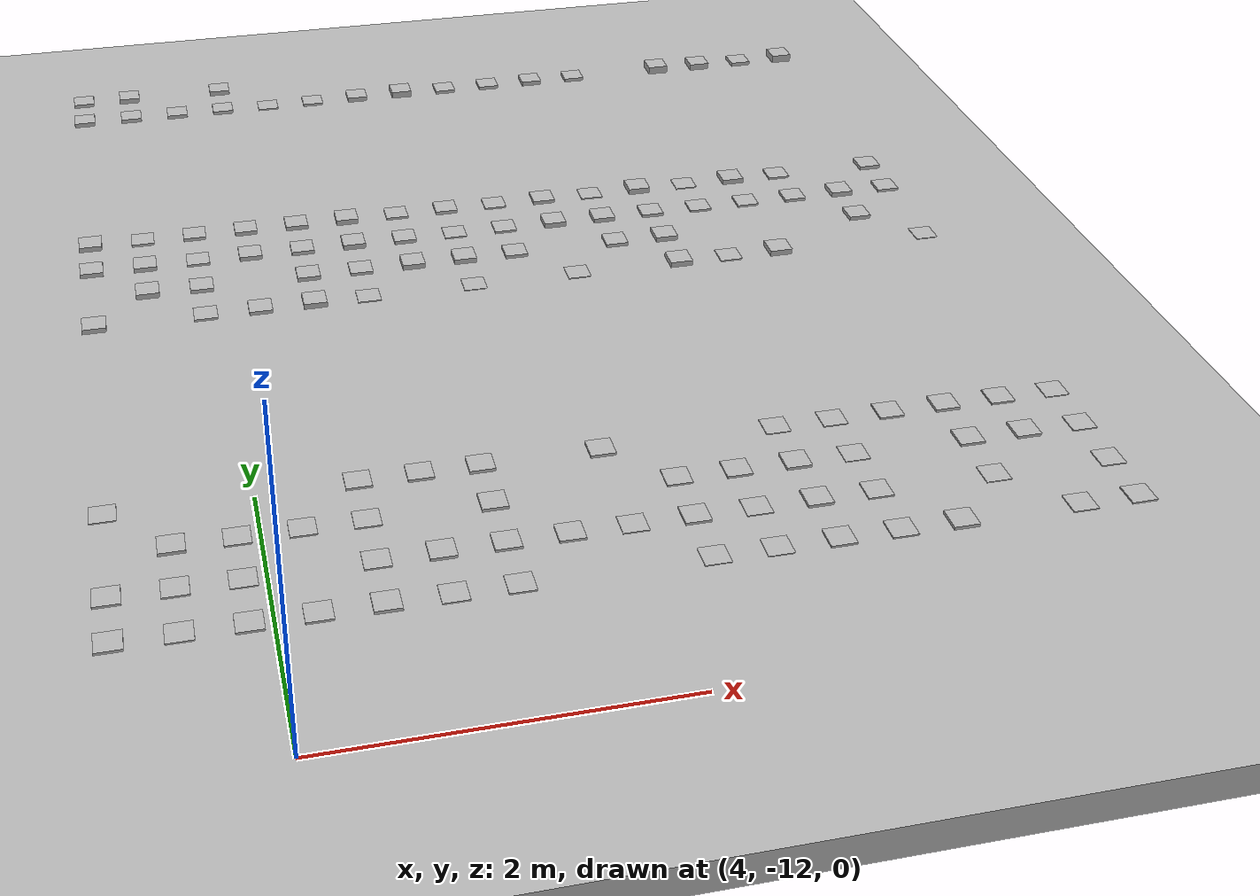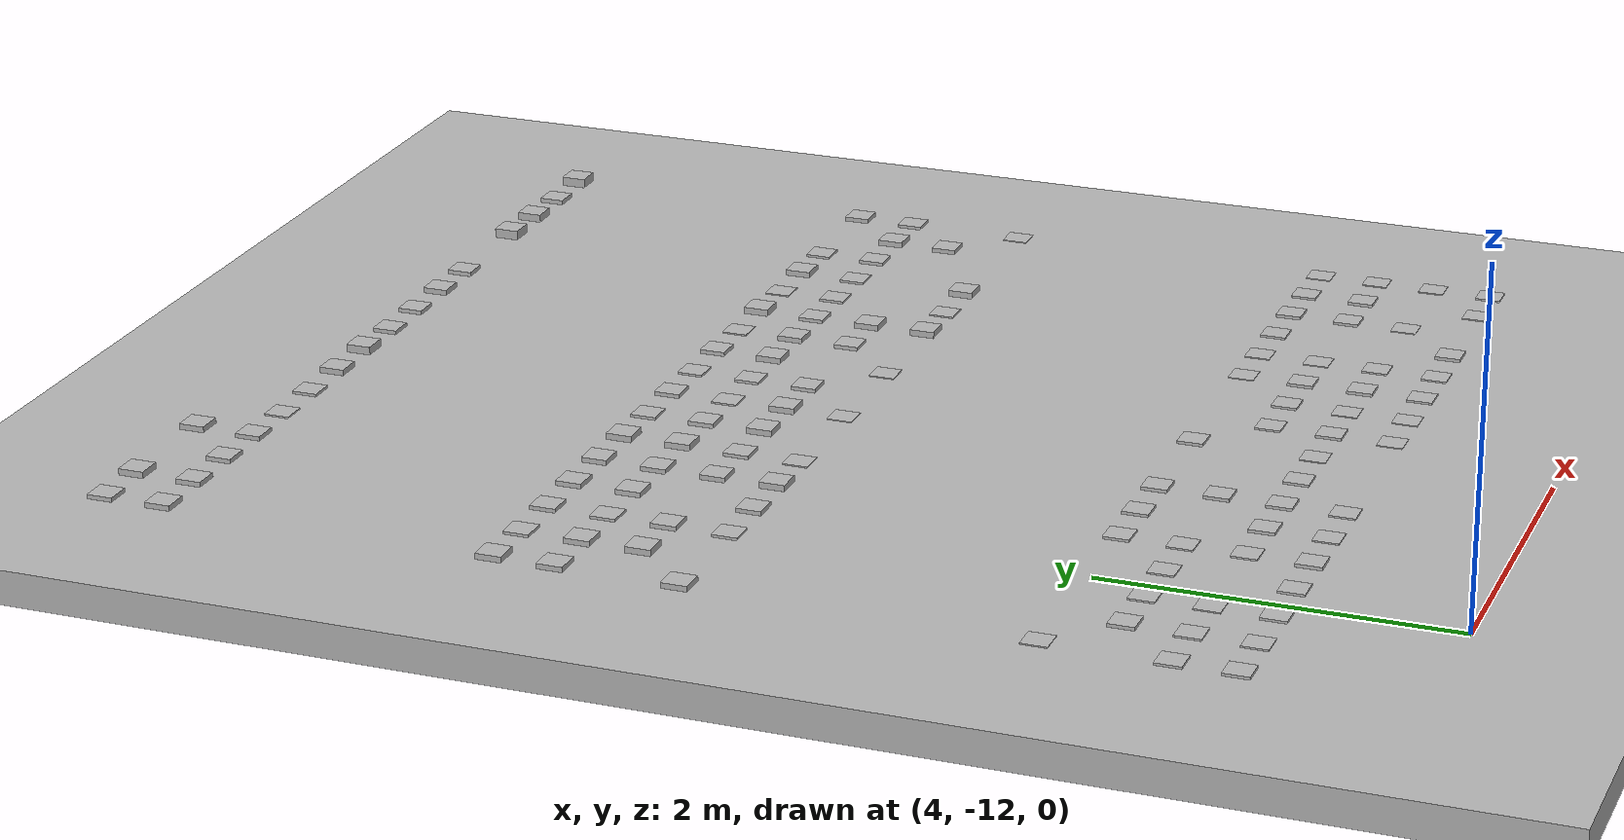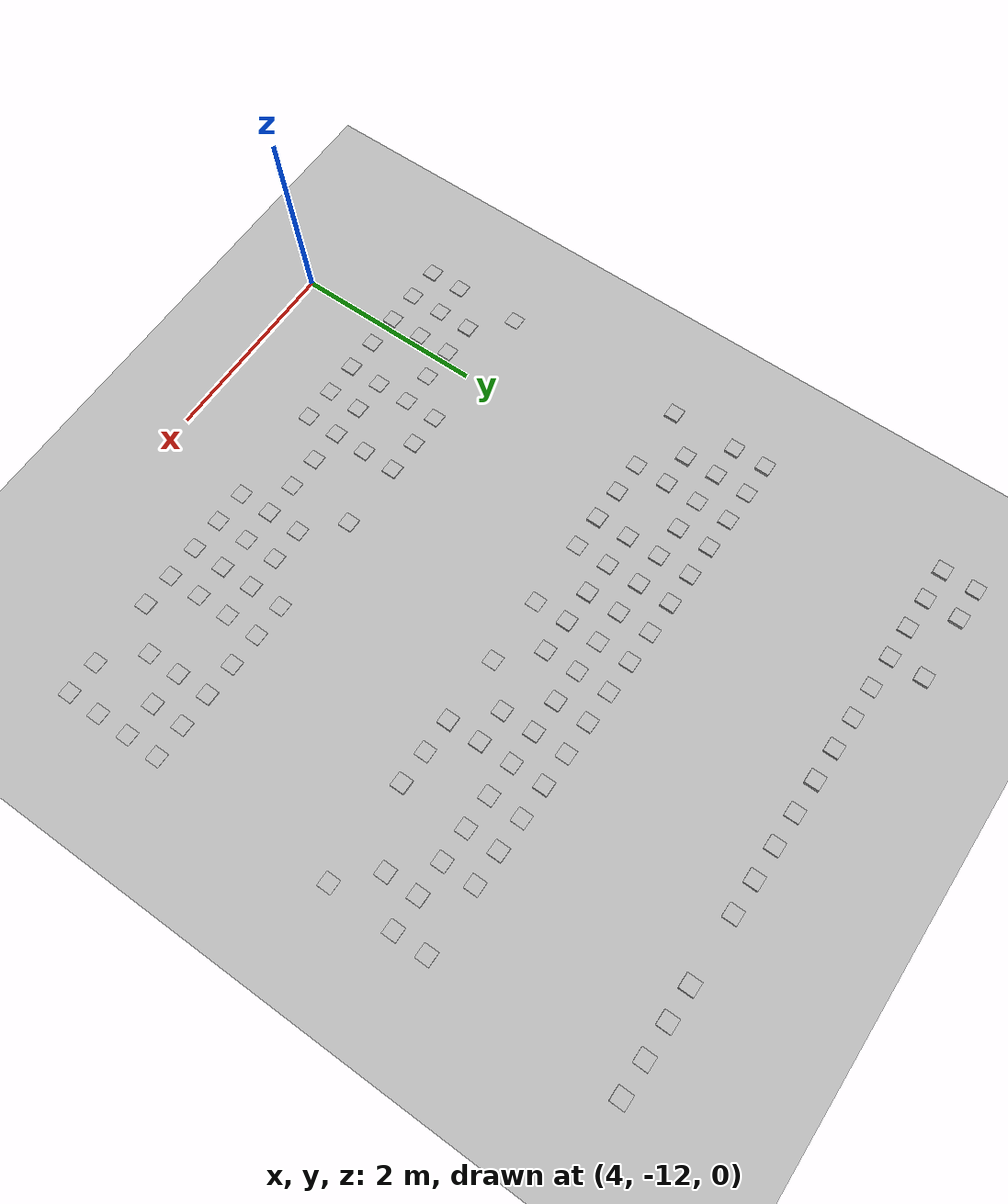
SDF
<sdf version="1.6">
 <world name="ugv_rough">
  <model name="ground">
   <static>true</static>
   <link name="l">
    <collision name="c"><geometry><box><size>60 60 0.2</size></box></geometry></collision>
    <visual name="v"><geometry><box><size>60 60 0.2</size></box></geometry></visual>
    <pose>0 0 -0.1 0 0 0</pose>
   </link>
  </model>
  <model name="r0_0">
   <static>true</static>
   <pose>3.175 -11.025 0.0078 0 0 0</pose>
   <link name="l">
    <collision name="c"><geometry><box><size>0.15 0.15 0.015547132854011278</size></box></geometry></collision>
    <visual name="v"><geometry><box><size>0.15 0.15 0.015547132854011278</size></box></geometry></visual>
   </link>
  </model>
  <model name="r0_1">
   <static>true</static>
   <pose>3.175 -10.675 0.0067 0 0 0</pose>
   <link name="l">
    <collision name="c"><geometry><box><size>0.15 0.15 0.013396511191184995</size></box></geometry></collision>
    <visual name="v"><geometry><box><size>0.15 0.15 0.013396511191184995</size></box></geometry></visual>
   </link>
  </model>
  <model name="r0_3">
   <static>true</static>
   <pose>3.175 -9.975 0.0035 0 0 0</pose>
   <link name="l">
    <collision name="c"><geometry><box><size>0.15 0.15 0.007059410223802909</size></box></geometry></collision>
    <visual name="v"><geometry><box><size>0.15 0.15 0.007059410223802909</size></box></geometry></visual>
   </link>
  </model>
  <model name="r0_4">
   <static>true</static>
   <pose>3.525 -11.025 0.0047 0 0 0</pose>
   <link name="l">
    <collision name="c"><geometry><box><size>0.15 0.15 0.009358154858016839</size></box></geometry></collision>
    <visual name="v"><geometry><box><size>0.15 0.15 0.009358154858016839</size></box></geometry></visual>
   </link>
  </model>
  <model name="r0_5">
   <static>true</static>
   <pose>3.525 -10.675 0.0053 0 0 0</pose>
   <link name="l">
    <collision name="c"><geometry><box><size>0.15 0.15 0.01069367482941755</size></box></geometry></collision>
    <visual name="v"><geometry><box><size>0.15 0.15 0.01069367482941755</size></box></geometry></visual>
   </link>
  </model>
  <model name="r0_6">
   <static>true</static>
   <pose>3.525 -10.325 0.0098 0 0 0</pose>
   <link name="l">
    <collision name="c"><geometry><box><size>0.15 0.15 0.019566181218247946</size></box></geometry></collision>
    <visual name="v"><geometry><box><size>0.15 0.15 0.019566181218247946</size></box></geometry></visual>
   </link>
  </model>
  <model name="r0_8">
   <static>true</static>
   <pose>3.875 -11.025 0.0067 0 0 0</pose>
   <link name="l">
    <collision name="c"><geometry><box><size>0.15 0.15 0.013424869364605326</size></box></geometry></collision>
    <visual name="v"><geometry><box><size>0.15 0.15 0.013424869364605326</size></box></geometry></visual>
   </link>
  </model>
  <model name="r0_9">
   <static>true</static>
   <pose>3.875 -10.675 0.0036 0 0 0</pose>
   <link name="l">
    <collision name="c"><geometry><box><size>0.15 0.15 0.0072845883189475115</size></box></geometry></collision>
    <visual name="v"><geometry><box><size>0.15 0.15 0.0072845883189475115</size></box></geometry></visual>
   </link>
  </model>
  <model name="r0_10">
   <static>true</static>
   <pose>3.875 -10.325 0.0049 0 0 0</pose>
   <link name="l">
    <collision name="c"><geometry><box><size>0.15 0.15 0.009776714143239716</size></box></geometry></collision>
    <visual name="v"><geometry><box><size>0.15 0.15 0.009776714143239716</size></box></geometry></visual>
   </link>
  </model>
  <model name="r0_12">
   <static>true</static>
   <pose>4.225 -11.025 0.0067 0 0 0</pose>
   <link name="l">
    <collision name="c"><geometry><box><size>0.15 0.15 0.013323967511427184</size></box></geometry></collision>
    <visual name="v"><geometry><box><size>0.15 0.15 0.013323967511427184</size></box></geometry></visual>
   </link>
  </model>
  <model name="r0_14">
   <static>true</static>
   <pose>4.225 -10.325 0.0046 0 0 0</pose>
   <link name="l">
    <collision name="c"><geometry><box><size>0.15 0.15 0.009161281165935262</size></box></geometry></collision>
    <visual name="v"><geometry><box><size>0.15 0.15 0.009161281165935262</size></box></geometry></visual>
   </link>
  </model>
  <model name="r0_16">
   <static>true</static>
   <pose>4.575 -11.025 0.0097 0 0 0</pose>
   <link name="l">
    <collision name="c"><geometry><box><size>0.15 0.15 0.019485795907556572</size></box></geometry></collision>
    <visual name="v"><geometry><box><size>0.15 0.15 0.019485795907556572</size></box></geometry></visual>
   </link>
  </model>
  <model name="r0_17">
   <static>true</static>
   <pose>4.575 -10.675 0.0049 0 0 0</pose>
   <link name="l">
    <collision name="c"><geometry><box><size>0.15 0.15 0.009749521485378132</size></box></geometry></collision>
    <visual name="v"><geometry><box><size>0.15 0.15 0.009749521485378132</size></box></geometry></visual>
   </link>
  </model>
  <model name="r0_18">
   <static>true</static>
   <pose>4.575 -10.325 0.0046 0 0 0</pose>
   <link name="l">
    <collision name="c"><geometry><box><size>0.15 0.15 0.009232277272747193</size></box></geometry></collision>
    <visual name="v"><geometry><box><size>0.15 0.15 0.009232277272747193</size></box></geometry></visual>
   </link>
  </model>
  <model name="r0_19">
   <static>true</static>
   <pose>4.575 -9.975 0.0071 0 0 0</pose>
   <link name="l">
    <collision name="c"><geometry><box><size>0.15 0.15 0.014282943116164005</size></box></geometry></collision>
    <visual name="v"><geometry><box><size>0.15 0.15 0.014282943116164005</size></box></geometry></visual>
   </link>
  </model>
  <model name="r0_20">
   <static>true</static>
   <pose>4.925 -11.025 0.0042 0 0 0</pose>
   <link name="l">
    <collision name="c"><geometry><box><size>0.15 0.15 0.00831456298999945</size></box></geometry></collision>
    <visual name="v"><geometry><box><size>0.15 0.15 0.00831456298999945</size></box></geometry></visual>
   </link>
  </model>
  <model name="r0_21">
   <static>true</static>
   <pose>4.925 -10.675 0.0089 0 0 0</pose>
   <link name="l">
    <collision name="c"><geometry><box><size>0.15 0.15 0.01776023376003058</size></box></geometry></collision>
    <visual name="v"><geometry><box><size>0.15 0.15 0.01776023376003058</size></box></geometry></visual>
   </link>
  </model>
  <model name="r0_23">
   <static>true</static>
   <pose>4.925 -9.975 0.0083 0 0 0</pose>
   <link name="l">
    <collision name="c"><geometry><box><size>0.15 0.15 0.01667012535569093</size></box></geometry></collision>
    <visual name="v"><geometry><box><size>0.15 0.15 0.01667012535569093</size></box></geometry></visual>
   </link>
  </model>
  <model name="r0_24">
   <static>true</static>
   <pose>5.275 -11.025 0.0047 0 0 0</pose>
   <link name="l">
    <collision name="c"><geometry><box><size>0.15 0.15 0.009369894819950162</size></box></geometry></collision>
    <visual name="v"><geometry><box><size>0.15 0.15 0.009369894819950162</size></box></geometry></visual>
   </link>
  </model>
  <model name="r0_25">
   <static>true</static>
   <pose>5.275 -10.675 0.0081 0 0 0</pose>
   <link name="l">
    <collision name="c"><geometry><box><size>0.15 0.15 0.01622959625288559</size></box></geometry></collision>
    <visual name="v"><geometry><box><size>0.15 0.15 0.01622959625288559</size></box></geometry></visual>
   </link>
  </model>
  <model name="r0_26">
   <static>true</static>
   <pose>5.275 -10.325 0.0095 0 0 0</pose>
   <link name="l">
    <collision name="c"><geometry><box><size>0.15 0.15 0.018911829772317448</size></box></geometry></collision>
    <visual name="v"><geometry><box><size>0.15 0.15 0.018911829772317448</size></box></geometry></visual>
   </link>
  </model>
  <model name="r0_27">
   <static>true</static>
   <pose>5.275 -9.975 0.0098 0 0 0</pose>
   <link name="l">
    <collision name="c"><geometry><box><size>0.15 0.15 0.019661767563897977</size></box></geometry></collision>
    <visual name="v"><geometry><box><size>0.15 0.15 0.019661767563897977</size></box></geometry></visual>
   </link>
  </model>
  <model name="r0_29">
   <static>true</static>
   <pose>5.625 -10.675 0.0070 0 0 0</pose>
   <link name="l">
    <collision name="c"><geometry><box><size>0.15 0.15 0.01397311519152616</size></box></geometry></collision>
    <visual name="v"><geometry><box><size>0.15 0.15 0.01397311519152616</size></box></geometry></visual>
   </link>
  </model>
  <model name="r0_33">
   <static>true</static>
   <pose>5.975 -10.675 0.0031 0 0 0</pose>
   <link name="l">
    <collision name="c"><geometry><box><size>0.15 0.15 0.006281241597856808</size></box></geometry></collision>
    <visual name="v"><geometry><box><size>0.15 0.15 0.006281241597856808</size></box></geometry></visual>
   </link>
  </model>
  <model name="r0_35">
   <static>true</static>
   <pose>5.975 -9.975 0.0085 0 0 0</pose>
   <link name="l">
    <collision name="c"><geometry><box><size>0.15 0.15 0.017080982514727245</size></box></geometry></collision>
    <visual name="v"><geometry><box><size>0.15 0.15 0.017080982514727245</size></box></geometry></visual>
   </link>
  </model>
  <model name="r0_36">
   <static>true</static>
   <pose>6.325 -11.025 0.0029 0 0 0</pose>
   <link name="l">
    <collision name="c"><geometry><box><size>0.15 0.15 0.005820320772913936</size></box></geometry></collision>
    <visual name="v"><geometry><box><size>0.15 0.15 0.005820320772913936</size></box></geometry></visual>
   </link>
  </model>
  <model name="r0_37">
   <static>true</static>
   <pose>6.325 -10.675 0.0078 0 0 0</pose>
   <link name="l">
    <collision name="c"><geometry><box><size>0.15 0.15 0.015600951726700656</size></box></geometry></collision>
    <visual name="v"><geometry><box><size>0.15 0.15 0.015600951726700656</size></box></geometry></visual>
   </link>
  </model>
  <model name="r0_38">
   <static>true</static>
   <pose>6.325 -10.325 0.0055 0 0 0</pose>
   <link name="l">
    <collision name="c"><geometry><box><size>0.15 0.15 0.010961930322511393</size></box></geometry></collision>
    <visual name="v"><geometry><box><size>0.15 0.15 0.010961930322511393</size></box></geometry></visual>
   </link>
  </model>
  <model name="r0_40">
   <static>true</static>
   <pose>6.675 -11.025 0.0029 0 0 0</pose>
   <link name="l">
    <collision name="c"><geometry><box><size>0.15 0.15 0.005840765443610594</size></box></geometry></collision>
    <visual name="v"><geometry><box><size>0.15 0.15 0.005840765443610594</size></box></geometry></visual>
   </link>
  </model>
  <model name="r0_41">
   <static>true</static>
   <pose>6.675 -10.675 0.0032 0 0 0</pose>
   <link name="l">
    <collision name="c"><geometry><box><size>0.15 0.15 0.006389055547988674</size></box></geometry></collision>
    <visual name="v"><geometry><box><size>0.15 0.15 0.006389055547988674</size></box></geometry></visual>
   </link>
  </model>
  <model name="r0_42">
   <static>true</static>
   <pose>6.675 -10.325 0.0066 0 0 0</pose>
   <link name="l">
    <collision name="c"><geometry><box><size>0.15 0.15 0.013171964470758152</size></box></geometry></collision>
    <visual name="v"><geometry><box><size>0.15 0.15 0.013171964470758152</size></box></geometry></visual>
   </link>
  </model>
  <model name="r0_44">
   <static>true</static>
   <pose>7.025 -11.025 0.0062 0 0 0</pose>
   <link name="l">
    <collision name="c"><geometry><box><size>0.15 0.15 0.012388606739907073</size></box></geometry></collision>
    <visual name="v"><geometry><box><size>0.15 0.15 0.012388606739907073</size></box></geometry></visual>
   </link>
  </model>
  <model name="r0_45">
   <static>true</static>
   <pose>7.025 -10.675 0.0090 0 0 0</pose>
   <link name="l">
    <collision name="c"><geometry><box><size>0.15 0.15 0.017906772196044207</size></box></geometry></collision>
    <visual name="v"><geometry><box><size>0.15 0.15 0.017906772196044207</size></box></geometry></visual>
   </link>
  </model>
  <model name="r0_46">
   <static>true</static>
   <pose>7.025 -10.325 0.0087 0 0 0</pose>
   <link name="l">
    <collision name="c"><geometry><box><size>0.15 0.15 0.01738868417139366</size></box></geometry></collision>
    <visual name="v"><geometry><box><size>0.15 0.15 0.01738868417139366</size></box></geometry></visual>
   </link>
  </model>
  <model name="r0_47">
   <static>true</static>
   <pose>7.025 -9.975 0.0029 0 0 0</pose>
   <link name="l">
    <collision name="c"><geometry><box><size>0.15 0.15 0.005876138713369046</size></box></geometry></collision>
    <visual name="v"><geometry><box><size>0.15 0.15 0.005876138713369046</size></box></geometry></visual>
   </link>
  </model>
  <model name="r0_48">
   <static>true</static>
   <pose>7.375 -11.025 0.0046 0 0 0</pose>
   <link name="l">
    <collision name="c"><geometry><box><size>0.15 0.15 0.00916409617161099</size></box></geometry></collision>
    <visual name="v"><geometry><box><size>0.15 0.15 0.00916409617161099</size></box></geometry></visual>
   </link>
  </model>
  <model name="r0_49">
   <static>true</static>
   <pose>7.375 -10.675 0.0048 0 0 0</pose>
   <link name="l">
    <collision name="c"><geometry><box><size>0.15 0.15 0.009699595957422383</size></box></geometry></collision>
    <visual name="v"><geometry><box><size>0.15 0.15 0.009699595957422383</size></box></geometry></visual>
   </link>
  </model>
  <model name="r0_50">
   <static>true</static>
   <pose>7.375 -10.325 0.0028 0 0 0</pose>
   <link name="l">
    <collision name="c"><geometry><box><size>0.15 0.15 0.00560776538717445</size></box></geometry></collision>
    <visual name="v"><geometry><box><size>0.15 0.15 0.00560776538717445</size></box></geometry></visual>
   </link>
  </model>
  <model name="r0_51">
   <static>true</static>
   <pose>7.375 -9.975 0.0033 0 0 0</pose>
   <link name="l">
    <collision name="c"><geometry><box><size>0.15 0.15 0.006579138927012005</size></box></geometry></collision>
    <visual name="v"><geometry><box><size>0.15 0.15 0.006579138927012005</size></box></geometry></visual>
   </link>
  </model>
  <model name="r0_52">
   <static>true</static>
   <pose>7.725 -11.025 0.0098 0 0 0</pose>
   <link name="l">
    <collision name="c"><geometry><box><size>0.15 0.15 0.019684848480530086</size></box></geometry></collision>
    <visual name="v"><geometry><box><size>0.15 0.15 0.019684848480530086</size></box></geometry></visual>
   </link>
  </model>
  <model name="r0_55">
   <static>true</static>
   <pose>7.725 -9.975 0.0065 0 0 0</pose>
   <link name="l">
    <collision name="c"><geometry><box><size>0.15 0.15 0.013039544330893424</size></box></geometry></collision>
    <visual name="v"><geometry><box><size>0.15 0.15 0.013039544330893424</size></box></geometry></visual>
   </link>
  </model>
  <model name="r0_57">
   <static>true</static>
   <pose>8.075 -10.675 0.0029 0 0 0</pose>
   <link name="l">
    <collision name="c"><geometry><box><size>0.15 0.15 0.005841574045622176</size></box></geometry></collision>
    <visual name="v"><geometry><box><size>0.15 0.15 0.005841574045622176</size></box></geometry></visual>
   </link>
  </model>
  <model name="r0_58">
   <static>true</static>
   <pose>8.075 -10.325 0.0079 0 0 0</pose>
   <link name="l">
    <collision name="c"><geometry><box><size>0.15 0.15 0.015868859443835412</size></box></geometry></collision>
    <visual name="v"><geometry><box><size>0.15 0.15 0.015868859443835412</size></box></geometry></visual>
   </link>
  </model>
  <model name="r0_59">
   <static>true</static>
   <pose>8.075 -9.975 0.0091 0 0 0</pose>
   <link name="l">
    <collision name="c"><geometry><box><size>0.15 0.15 0.018231862017419474</size></box></geometry></collision>
    <visual name="v"><geometry><box><size>0.15 0.15 0.018231862017419474</size></box></geometry></visual>
   </link>
  </model>
  <model name="r0_60">
   <static>true</static>
   <pose>8.425 -11.025 0.0037 0 0 0</pose>
   <link name="l">
    <collision name="c"><geometry><box><size>0.15 0.15 0.007407835591790875</size></box></geometry></collision>
    <visual name="v"><geometry><box><size>0.15 0.15 0.007407835591790875</size></box></geometry></visual>
   </link>
  </model>
  <model name="r0_62">
   <static>true</static>
   <pose>8.425 -10.325 0.0088 0 0 0</pose>
   <link name="l">
    <collision name="c"><geometry><box><size>0.15 0.15 0.01760162653569356</size></box></geometry></collision>
    <visual name="v"><geometry><box><size>0.15 0.15 0.01760162653569356</size></box></geometry></visual>
   </link>
  </model>
  <model name="r0_63">
   <static>true</static>
   <pose>8.425 -9.975 0.0063 0 0 0</pose>
   <link name="l">
    <collision name="c"><geometry><box><size>0.15 0.15 0.012651329003121664</size></box></geometry></collision>
    <visual name="v"><geometry><box><size>0.15 0.15 0.012651329003121664</size></box></geometry></visual>
   </link>
  </model>
  <model name="r0_64">
   <static>true</static>
   <pose>8.775 -11.025 0.0050 0 0 0</pose>
   <link name="l">
    <collision name="c"><geometry><box><size>0.15 0.15 0.01007028652117116</size></box></geometry></collision>
    <visual name="v"><geometry><box><size>0.15 0.15 0.01007028652117116</size></box></geometry></visual>
   </link>
  </model>
  <model name="r0_65">
   <static>true</static>
   <pose>8.775 -10.675 0.0033 0 0 0</pose>
   <link name="l">
    <collision name="c"><geometry><box><size>0.15 0.15 0.0066168711934217785</size></box></geometry></collision>
    <visual name="v"><geometry><box><size>0.15 0.15 0.0066168711934217785</size></box></geometry></visual>
   </link>
  </model>
  <model name="r0_66">
   <static>true</static>
   <pose>8.775 -10.325 0.0035 0 0 0</pose>
   <link name="l">
    <collision name="c"><geometry><box><size>0.15 0.15 0.006948003670148912</size></box></geometry></collision>
    <visual name="v"><geometry><box><size>0.15 0.15 0.006948003670148912</size></box></geometry></visual>
   </link>
  </model>
  <model name="r0_67">
   <static>true</static>
   <pose>8.775 -9.975 0.0029 0 0 0</pose>
   <link name="l">
    <collision name="c"><geometry><box><size>0.15 0.15 0.005848231726648963</size></box></geometry></collision>
    <visual name="v"><geometry><box><size>0.15 0.15 0.005848231726648963</size></box></geometry></visual>
   </link>
  </model>
  <model name="r1_0">
   <static>true</static>
   <pose>3.175 -8.025 0.0159 0 0 0</pose>
   <link name="l">
    <collision name="c"><geometry><box><size>0.15 0.15 0.03186603871839881</size></box></geometry></collision>
    <visual name="v"><geometry><box><size>0.15 0.15 0.03186603871839881</size></box></geometry></visual>
   </link>
  </model>
  <model name="r1_2">
   <static>true</static>
   <pose>3.175 -7.325 0.0152 0 0 0</pose>
   <link name="l">
    <collision name="c"><geometry><box><size>0.15 0.15 0.030409590958963627</size></box></geometry></collision>
    <visual name="v"><geometry><box><size>0.15 0.15 0.030409590958963627</size></box></geometry></visual>
   </link>
  </model>
  <model name="r1_3">
   <static>true</static>
   <pose>3.175 -6.975 0.0173 0 0 0</pose>
   <link name="l">
    <collision name="c"><geometry><box><size>0.15 0.15 0.034508149607381425</size></box></geometry></collision>
    <visual name="v"><geometry><box><size>0.15 0.15 0.034508149607381425</size></box></geometry></visual>
   </link>
  </model>
  <model name="r1_5">
   <static>true</static>
   <pose>3.525 -7.675 0.0180 0 0 0</pose>
   <link name="l">
    <collision name="c"><geometry><box><size>0.15 0.15 0.03609969746390211</size></box></geometry></collision>
    <visual name="v"><geometry><box><size>0.15 0.15 0.03609969746390211</size></box></geometry></visual>
   </link>
  </model>
  <model name="r1_6">
   <static>true</static>
   <pose>3.525 -7.325 0.0157 0 0 0</pose>
   <link name="l">
    <collision name="c"><geometry><box><size>0.15 0.15 0.031435842263765126</size></box></geometry></collision>
    <visual name="v"><geometry><box><size>0.15 0.15 0.031435842263765126</size></box></geometry></visual>
   </link>
  </model>
  <model name="r1_7">
   <static>true</static>
   <pose>3.525 -6.975 0.0081 0 0 0</pose>
   <link name="l">
    <collision name="c"><geometry><box><size>0.15 0.15 0.016267186618441353</size></box></geometry></collision>
    <visual name="v"><geometry><box><size>0.15 0.15 0.016267186618441353</size></box></geometry></visual>
   </link>
  </model>
  <model name="r1_8">
   <static>true</static>
   <pose>3.875 -8.025 0.0075 0 0 0</pose>
   <link name="l">
    <collision name="c"><geometry><box><size>0.15 0.15 0.01497890578634081</size></box></geometry></collision>
    <visual name="v"><geometry><box><size>0.15 0.15 0.01497890578634081</size></box></geometry></visual>
   </link>
  </model>
  <model name="r1_9">
   <static>true</static>
   <pose>3.875 -7.675 0.0130 0 0 0</pose>
   <link name="l">
    <collision name="c"><geometry><box><size>0.15 0.15 0.025961049131654187</size></box></geometry></collision>
    <visual name="v"><geometry><box><size>0.15 0.15 0.025961049131654187</size></box></geometry></visual>
   </link>
  </model>
  <model name="r1_10">
   <static>true</static>
   <pose>3.875 -7.325 0.0080 0 0 0</pose>
   <link name="l">
    <collision name="c"><geometry><box><size>0.15 0.15 0.01603698664342799</size></box></geometry></collision>
    <visual name="v"><geometry><box><size>0.15 0.15 0.01603698664342799</size></box></geometry></visual>
   </link>
  </model>
  <model name="r1_11">
   <static>true</static>
   <pose>3.875 -6.975 0.0114 0 0 0</pose>
   <link name="l">
    <collision name="c"><geometry><box><size>0.15 0.15 0.022884436905110297</size></box></geometry></collision>
    <visual name="v"><geometry><box><size>0.15 0.15 0.022884436905110297</size></box></geometry></visual>
   </link>
  </model>
  <model name="r1_12">
   <static>true</static>
   <pose>4.225 -8.025 0.0122 0 0 0</pose>
   <link name="l">
    <collision name="c"><geometry><box><size>0.15 0.15 0.02431172248102034</size></box></geometry></collision>
    <visual name="v"><geometry><box><size>0.15 0.15 0.02431172248102034</size></box></geometry></visual>
   </link>
  </model>
  <model name="r1_14">
   <static>true</static>
   <pose>4.225 -7.325 0.0147 0 0 0</pose>
   <link name="l">
    <collision name="c"><geometry><box><size>0.15 0.15 0.029483520373502853</size></box></geometry></collision>
    <visual name="v"><geometry><box><size>0.15 0.15 0.029483520373502853</size></box></geometry></visual>
   </link>
  </model>
  <model name="r1_15">
   <static>true</static>
   <pose>4.225 -6.975 0.0142 0 0 0</pose>
   <link name="l">
    <collision name="c"><geometry><box><size>0.15 0.15 0.028339455350289124</size></box></geometry></collision>
    <visual name="v"><geometry><box><size>0.15 0.15 0.028339455350289124</size></box></geometry></visual>
   </link>
  </model>
  <model name="r1_16">
   <static>true</static>
   <pose>4.575 -8.025 0.0184 0 0 0</pose>
   <link name="l">
    <collision name="c"><geometry><box><size>0.15 0.15 0.0368868981281233</size></box></geometry></collision>
    <visual name="v"><geometry><box><size>0.15 0.15 0.0368868981281233</size></box></geometry></visual>
   </link>
  </model>
  <model name="r1_17">
   <static>true</static>
   <pose>4.575 -7.675 0.0143 0 0 0</pose>
   <link name="l">
    <collision name="c"><geometry><box><size>0.15 0.15 0.02859756133035618</size></box></geometry></collision>
    <visual name="v"><geometry><box><size>0.15 0.15 0.02859756133035618</size></box></geometry></visual>
   </link>
  </model>
  <model name="r1_18">
   <static>true</static>
   <pose>4.575 -7.325 0.0131 0 0 0</pose>
   <link name="l">
    <collision name="c"><geometry><box><size>0.15 0.15 0.026230899874219258</size></box></geometry></collision>
    <visual name="v"><geometry><box><size>0.15 0.15 0.026230899874219258</size></box></geometry></visual>
   </link>
  </model>
  <model name="r1_19">
   <static>true</static>
   <pose>4.575 -6.975 0.0147 0 0 0</pose>
   <link name="l">
    <collision name="c"><geometry><box><size>0.15 0.15 0.029484286587581014</size></box></geometry></collision>
    <visual name="v"><geometry><box><size>0.15 0.15 0.029484286587581014</size></box></geometry></visual>
   </link>
  </model>
  <model name="r1_20">
   <static>true</static>
   <pose>4.925 -8.025 0.0038 0 0 0</pose>
   <link name="l">
    <collision name="c"><geometry><box><size>0.15 0.15 0.007501688870526979</size></box></geometry></collision>
    <visual name="v"><geometry><box><size>0.15 0.15 0.007501688870526979</size></box></geometry></visual>
   </link>
  </model>
  <model name="r1_21">
   <static>true</static>
   <pose>4.925 -7.675 0.0100 0 0 0</pose>
   <link name="l">
    <collision name="c"><geometry><box><size>0.15 0.15 0.02007911346363382</size></box></geometry></collision>
    <visual name="v"><geometry><box><size>0.15 0.15 0.02007911346363382</size></box></geometry></visual>
   </link>
  </model>
  <model name="r1_22">
   <static>true</static>
   <pose>4.925 -7.325 0.0179 0 0 0</pose>
   <link name="l">
    <collision name="c"><geometry><box><size>0.15 0.15 0.035801194194416464</size></box></geometry></collision>
    <visual name="v"><geometry><box><size>0.15 0.15 0.035801194194416464</size></box></geometry></visual>
   </link>
  </model>
  <model name="r1_23">
   <static>true</static>
   <pose>4.925 -6.975 0.0185 0 0 0</pose>
   <link name="l">
    <collision name="c"><geometry><box><size>0.15 0.15 0.03705433253903584</size></box></geometry></collision>
    <visual name="v"><geometry><box><size>0.15 0.15 0.03705433253903584</size></box></geometry></visual>
   </link>
  </model>
  <model name="r1_25">
   <static>true</static>
   <pose>5.275 -7.675 0.0176 0 0 0</pose>
   <link name="l">
    <collision name="c"><geometry><box><size>0.15 0.15 0.03510925862222786</size></box></geometry></collision>
    <visual name="v"><geometry><box><size>0.15 0.15 0.03510925862222786</size></box></geometry></visual>
   </link>
  </model>
  <model name="r1_26">
   <static>true</static>
   <pose>5.275 -7.325 0.0127 0 0 0</pose>
   <link name="l">
    <collision name="c"><geometry><box><size>0.15 0.15 0.025451698870342623</size></box></geometry></collision>
    <visual name="v"><geometry><box><size>0.15 0.15 0.025451698870342623</size></box></geometry></visual>
   </link>
  </model>
  <model name="r1_27">
   <static>true</static>
   <pose>5.275 -6.975 0.0081 0 0 0</pose>
   <link name="l">
    <collision name="c"><geometry><box><size>0.15 0.15 0.016265386249711595</size></box></geometry></collision>
    <visual name="v"><geometry><box><size>0.15 0.15 0.016265386249711595</size></box></geometry></visual>
   </link>
  </model>
  <model name="r1_28">
   <static>true</static>
   <pose>5.625 -8.025 0.0026 0 0 0</pose>
   <link name="l">
    <collision name="c"><geometry><box><size>0.15 0.15 0.005183143347399679</size></box></geometry></collision>
    <visual name="v"><geometry><box><size>0.15 0.15 0.005183143347399679</size></box></geometry></visual>
   </link>
  </model>
  <model name="r1_29">
   <static>true</static>
   <pose>5.625 -7.675 0.0173 0 0 0</pose>
   <link name="l">
    <collision name="c"><geometry><box><size>0.15 0.15 0.034507514501176825</size></box></geometry></collision>
    <visual name="v"><geometry><box><size>0.15 0.15 0.034507514501176825</size></box></geometry></visual>
   </link>
  </model>
  <model name="r1_30">
   <static>true</static>
   <pose>5.625 -7.325 0.0051 0 0 0</pose>
   <link name="l">
    <collision name="c"><geometry><box><size>0.15 0.15 0.010151858459281442</size></box></geometry></collision>
    <visual name="v"><geometry><box><size>0.15 0.15 0.010151858459281442</size></box></geometry></visual>
   </link>
  </model>
  <model name="r1_31">
   <static>true</static>
   <pose>5.625 -6.975 0.0119 0 0 0</pose>
   <link name="l">
    <collision name="c"><geometry><box><size>0.15 0.15 0.023714359972812887</size></box></geometry></collision>
    <visual name="v"><geometry><box><size>0.15 0.15 0.023714359972812887</size></box></geometry></visual>
   </link>
  </model>
  <model name="r1_33">
   <static>true</static>
   <pose>5.975 -7.675 0.0111 0 0 0</pose>
   <link name="l">
    <collision name="c"><geometry><box><size>0.15 0.15 0.0222594165182244</size></box></geometry></collision>
    <visual name="v"><geometry><box><size>0.15 0.15 0.0222594165182244</size></box></geometry></visual>
   </link>
  </model>
  <model name="r1_34">
   <static>true</static>
   <pose>5.975 -7.325 0.0078 0 0 0</pose>
   <link name="l">
    <collision name="c"><geometry><box><size>0.15 0.15 0.015680549171348934</size></box></geometry></collision>
    <visual name="v"><geometry><box><size>0.15 0.15 0.015680549171348934</size></box></geometry></visual>
   </link>
  </model>
  <model name="r1_35">
   <static>true</static>
   <pose>5.975 -6.975 0.0061 0 0 0</pose>
   <link name="l">
    <collision name="c"><geometry><box><size>0.15 0.15 0.012264479800637478</size></box></geometry></collision>
    <visual name="v"><geometry><box><size>0.15 0.15 0.012264479800637478</size></box></geometry></visual>
   </link>
  </model>
  <model name="r1_36">
   <static>true</static>
   <pose>6.325 -8.025 0.0033 0 0 0</pose>
   <link name="l">
    <collision name="c"><geometry><box><size>0.15 0.15 0.0066457579731248155</size></box></geometry></collision>
    <visual name="v"><geometry><box><size>0.15 0.15 0.0066457579731248155</size></box></geometry></visual>
   </link>
  </model>
  <model name="r1_38">
   <static>true</static>
   <pose>6.325 -7.325 0.0175 0 0 0</pose>
   <link name="l">
    <collision name="c"><geometry><box><size>0.15 0.15 0.034936324386240086</size></box></geometry></collision>
    <visual name="v"><geometry><box><size>0.15 0.15 0.034936324386240086</size></box></geometry></visual>
   </link>
  </model>
  <model name="r1_39">
   <static>true</static>
   <pose>6.325 -6.975 0.0122 0 0 0</pose>
   <link name="l">
    <collision name="c"><geometry><box><size>0.15 0.15 0.02431173599102835</size></box></geometry></collision>
    <visual name="v"><geometry><box><size>0.15 0.15 0.02431173599102835</size></box></geometry></visual>
   </link>
  </model>
  <model name="r1_41">
   <static>true</static>
   <pose>6.675 -7.675 0.0116 0 0 0</pose>
   <link name="l">
    <collision name="c"><geometry><box><size>0.15 0.15 0.0231750055640836</size></box></geometry></collision>
    <visual name="v"><geometry><box><size>0.15 0.15 0.0231750055640836</size></box></geometry></visual>
   </link>
  </model>
  <model name="r1_42">
   <static>true</static>
   <pose>6.675 -7.325 0.0153 0 0 0</pose>
   <link name="l">
    <collision name="c"><geometry><box><size>0.15 0.15 0.030659949284002123</size></box></geometry></collision>
    <visual name="v"><geometry><box><size>0.15 0.15 0.030659949284002123</size></box></geometry></visual>
   </link>
  </model>
  <model name="r1_43">
   <static>true</static>
   <pose>6.675 -6.975 0.0040 0 0 0</pose>
   <link name="l">
    <collision name="c"><geometry><box><size>0.15 0.15 0.008023345125932595</size></box></geometry></collision>
    <visual name="v"><geometry><box><size>0.15 0.15 0.008023345125932595</size></box></geometry></visual>
   </link>
  </model>
  <model name="r1_44">
   <static>true</static>
   <pose>7.025 -8.025 0.0186 0 0 0</pose>
   <link name="l">
    <collision name="c"><geometry><box><size>0.15 0.15 0.037172903649452346</size></box></geometry></collision>
    <visual name="v"><geometry><box><size>0.15 0.15 0.037172903649452346</size></box></geometry></visual>
   </link>
  </model>
  <model name="r1_45">
   <static>true</static>
   <pose>7.025 -7.675 0.0168 0 0 0</pose>
   <link name="l">
    <collision name="c"><geometry><box><size>0.15 0.15 0.033690544705927986</size></box></geometry></collision>
    <visual name="v"><geometry><box><size>0.15 0.15 0.033690544705927986</size></box></geometry></visual>
   </link>
  </model>
  <model name="r1_46">
   <static>true</static>
   <pose>7.025 -7.325 0.0108 0 0 0</pose>
   <link name="l">
    <collision name="c"><geometry><box><size>0.15 0.15 0.021548166407242445</size></box></geometry></collision>
    <visual name="v"><geometry><box><size>0.15 0.15 0.021548166407242445</size></box></geometry></visual>
   </link>
  </model>
  <model name="r1_47">
   <static>true</static>
   <pose>7.025 -6.975 0.0198 0 0 0</pose>
   <link name="l">
    <collision name="c"><geometry><box><size>0.15 0.15 0.03953356143274058</size></box></geometry></collision>
    <visual name="v"><geometry><box><size>0.15 0.15 0.03953356143274058</size></box></geometry></visual>
   </link>
  </model>
  <model name="r1_48">
   <static>true</static>
   <pose>7.375 -8.025 0.0044 0 0 0</pose>
   <link name="l">
    <collision name="c"><geometry><box><size>0.15 0.15 0.00872108118956597</size></box></geometry></collision>
    <visual name="v"><geometry><box><size>0.15 0.15 0.00872108118956597</size></box></geometry></visual>
   </link>
  </model>
  <model name="r1_50">
   <static>true</static>
   <pose>7.375 -7.325 0.0074 0 0 0</pose>
   <link name="l">
    <collision name="c"><geometry><box><size>0.15 0.15 0.014812845418995715</size></box></geometry></collision>
    <visual name="v"><geometry><box><size>0.15 0.15 0.014812845418995715</size></box></geometry></visual>
   </link>
  </model>
  <model name="r1_51">
   <static>true</static>
   <pose>7.375 -6.975 0.0036 0 0 0</pose>
   <link name="l">
    <collision name="c"><geometry><box><size>0.15 0.15 0.00728908176189834</size></box></geometry></collision>
    <visual name="v"><geometry><box><size>0.15 0.15 0.00728908176189834</size></box></geometry></visual>
   </link>
  </model>
  <model name="r1_52">
   <static>true</static>
   <pose>7.725 -8.025 0.0189 0 0 0</pose>
   <link name="l">
    <collision name="c"><geometry><box><size>0.15 0.15 0.037849440274160984</size></box></geometry></collision>
    <visual name="v"><geometry><box><size>0.15 0.15 0.037849440274160984</size></box></geometry></visual>
   </link>
  </model>
  <model name="r1_54">
   <static>true</static>
   <pose>7.725 -7.325 0.0071 0 0 0</pose>
   <link name="l">
    <collision name="c"><geometry><box><size>0.15 0.15 0.014116991915665893</size></box></geometry></collision>
    <visual name="v"><geometry><box><size>0.15 0.15 0.014116991915665893</size></box></geometry></visual>
   </link>
  </model>
  <model name="r1_55">
   <static>true</static>
   <pose>7.725 -6.975 0.0173 0 0 0</pose>
   <link name="l">
    <collision name="c"><geometry><box><size>0.15 0.15 0.03452780491630793</size></box></geometry></collision>
    <visual name="v"><geometry><box><size>0.15 0.15 0.03452780491630793</size></box></geometry></visual>
   </link>
  </model>
  <model name="r1_58">
   <static>true</static>
   <pose>8.075 -7.325 0.0104 0 0 0</pose>
   <link name="l">
    <collision name="c"><geometry><box><size>0.15 0.15 0.020755569216880602</size></box></geometry></collision>
    <visual name="v"><geometry><box><size>0.15 0.15 0.020755569216880602</size></box></geometry></visual>
   </link>
  </model>
  <model name="r1_59">
   <static>true</static>
   <pose>8.075 -6.975 0.0072 0 0 0</pose>
   <link name="l">
    <collision name="c"><geometry><box><size>0.15 0.15 0.014375006100363389</size></box></geometry></collision>
    <visual name="v"><geometry><box><size>0.15 0.15 0.014375006100363389</size></box></geometry></visual>
   </link>
  </model>
  <model name="r1_61">
   <static>true</static>
   <pose>8.425 -7.675 0.0134 0 0 0</pose>
   <link name="l">
    <collision name="c"><geometry><box><size>0.15 0.15 0.026822519228831065</size></box></geometry></collision>
    <visual name="v"><geometry><box><size>0.15 0.15 0.026822519228831065</size></box></geometry></visual>
   </link>
  </model>
  <model name="r1_62">
   <static>true</static>
   <pose>8.425 -7.325 0.0168 0 0 0</pose>
   <link name="l">
    <collision name="c"><geometry><box><size>0.15 0.15 0.03366007520318916</size></box></geometry></collision>
    <visual name="v"><geometry><box><size>0.15 0.15 0.03366007520318916</size></box></geometry></visual>
   </link>
  </model>
  <model name="r1_64">
   <static>true</static>
   <pose>8.775 -8.025 0.0026 0 0 0</pose>
   <link name="l">
    <collision name="c"><geometry><box><size>0.15 0.15 0.00513896529298739</size></box></geometry></collision>
    <visual name="v"><geometry><box><size>0.15 0.15 0.00513896529298739</size></box></geometry></visual>
   </link>
  </model>
  <model name="r1_66">
   <static>true</static>
   <pose>8.775 -7.325 0.0095 0 0 0</pose>
   <link name="l">
    <collision name="c"><geometry><box><size>0.15 0.15 0.018998470276892623</size></box></geometry></collision>
    <visual name="v"><geometry><box><size>0.15 0.15 0.018998470276892623</size></box></geometry></visual>
   </link>
  </model>
  <model name="r1_67">
   <static>true</static>
   <pose>8.775 -6.975 0.0130 0 0 0</pose>
   <link name="l">
    <collision name="c"><geometry><box><size>0.15 0.15 0.026005760974032843</size></box></geometry></collision>
    <visual name="v"><geometry><box><size>0.15 0.15 0.026005760974032843</size></box></geometry></visual>
   </link>
  </model>
  <model name="r2_0">
   <static>true</static>
   <pose>3.175 -5.025 0.0156 0 0 0</pose>
   <link name="l">
    <collision name="c"><geometry><box><size>0.15 0.15 0.03125690442131453</size></box></geometry></collision>
    <visual name="v"><geometry><box><size>0.15 0.15 0.03125690442131453</size></box></geometry></visual>
   </link>
  </model>
  <model name="r2_1">
   <static>true</static>
   <pose>3.175 -4.675 0.0126 0 0 0</pose>
   <link name="l">
    <collision name="c"><geometry><box><size>0.15 0.15 0.025275012060688388</size></box></geometry></collision>
    <visual name="v"><geometry><box><size>0.15 0.15 0.025275012060688388</size></box></geometry></visual>
   </link>
  </model>
  <model name="r2_4">
   <static>true</static>
   <pose>3.525 -5.025 0.0145 0 0 0</pose>
   <link name="l">
    <collision name="c"><geometry><box><size>0.15 0.15 0.029037466105969773</size></box></geometry></collision>
    <visual name="v"><geometry><box><size>0.15 0.15 0.029037466105969773</size></box></geometry></visual>
   </link>
  </model>
  <model name="r2_5">
   <static>true</static>
   <pose>3.525 -4.675 0.0188 0 0 0</pose>
   <link name="l">
    <collision name="c"><geometry><box><size>0.15 0.15 0.03756533797830958</size></box></geometry></collision>
    <visual name="v"><geometry><box><size>0.15 0.15 0.03756533797830958</size></box></geometry></visual>
   </link>
  </model>
  <model name="r2_8">
   <static>true</static>
   <pose>3.875 -5.025 0.0131 0 0 0</pose>
   <link name="l">
    <collision name="c"><geometry><box><size>0.15 0.15 0.026123754014128992</size></box></geometry></collision>
    <visual name="v"><geometry><box><size>0.15 0.15 0.026123754014128992</size></box></geometry></visual>
   </link>
  </model>
  <model name="r2_12">
   <static>true</static>
   <pose>4.225 -5.025 0.0126 0 0 0</pose>
   <link name="l">
    <collision name="c"><geometry><box><size>0.15 0.15 0.025265334261003896</size></box></geometry></collision>
    <visual name="v"><geometry><box><size>0.15 0.15 0.025265334261003896</size></box></geometry></visual>
   </link>
  </model>
  <model name="r2_13">
   <static>true</static>
   <pose>4.225 -4.675 0.0170 0 0 0</pose>
   <link name="l">
    <collision name="c"><geometry><box><size>0.15 0.15 0.03391217688751735</size></box></geometry></collision>
    <visual name="v"><geometry><box><size>0.15 0.15 0.03391217688751735</size></box></geometry></visual>
   </link>
  </model>
  <model name="r2_16">
   <static>true</static>
   <pose>4.575 -5.025 0.0049 0 0 0</pose>
   <link name="l">
    <collision name="c"><geometry><box><size>0.15 0.15 0.00975066139335413</size></box></geometry></collision>
    <visual name="v"><geometry><box><size>0.15 0.15 0.00975066139335413</size></box></geometry></visual>
   </link>
  </model>
  <model name="r2_20">
   <static>true</static>
   <pose>4.925 -5.025 0.0084 0 0 0</pose>
   <link name="l">
    <collision name="c"><geometry><box><size>0.15 0.15 0.016856302356703268</size></box></geometry></collision>
    <visual name="v"><geometry><box><size>0.15 0.15 0.016856302356703268</size></box></geometry></visual>
   </link>
  </model>
  <model name="r2_24">
   <static>true</static>
   <pose>5.275 -5.025 0.0174 0 0 0</pose>
   <link name="l">
    <collision name="c"><geometry><box><size>0.15 0.15 0.03471878513148602</size></box></geometry></collision>
    <visual name="v"><geometry><box><size>0.15 0.15 0.03471878513148602</size></box></geometry></visual>
   </link>
  </model>
  <model name="r2_28">
   <static>true</static>
   <pose>5.625 -5.025 0.0239 0 0 0</pose>
   <link name="l">
    <collision name="c"><geometry><box><size>0.15 0.15 0.04784278619516746</size></box></geometry></collision>
    <visual name="v"><geometry><box><size>0.15 0.15 0.04784278619516746</size></box></geometry></visual>
   </link>
  </model>
  <model name="r2_32">
   <static>true</static>
   <pose>5.975 -5.025 0.0117 0 0 0</pose>
   <link name="l">
    <collision name="c"><geometry><box><size>0.15 0.15 0.023476056894614197</size></box></geometry></collision>
    <visual name="v"><geometry><box><size>0.15 0.15 0.023476056894614197</size></box></geometry></visual>
   </link>
  </model>
  <model name="r2_36">
   <static>true</static>
   <pose>6.325 -5.025 0.0125 0 0 0</pose>
   <link name="l">
    <collision name="c"><geometry><box><size>0.15 0.15 0.02500818687759662</size></box></geometry></collision>
    <visual name="v"><geometry><box><size>0.15 0.15 0.02500818687759662</size></box></geometry></visual>
   </link>
  </model>
  <model name="r2_40">
   <static>true</static>
   <pose>6.675 -5.025 0.0165 0 0 0</pose>
   <link name="l">
    <collision name="c"><geometry><box><size>0.15 0.15 0.0329429005887495</size></box></geometry></collision>
    <visual name="v"><geometry><box><size>0.15 0.15 0.0329429005887495</size></box></geometry></visual>
   </link>
  </model>
  <model name="r2_44">
   <static>true</static>
   <pose>7.025 -5.025 0.0128 0 0 0</pose>
   <link name="l">
    <collision name="c"><geometry><box><size>0.15 0.15 0.025626591175558194</size></box></geometry></collision>
    <visual name="v"><geometry><box><size>0.15 0.15 0.025626591175558194</size></box></geometry></visual>
   </link>
  </model>
  <model name="r2_52">
   <static>true</static>
   <pose>7.725 -5.025 0.0284 0 0 0</pose>
   <link name="l">
    <collision name="c"><geometry><box><size>0.15 0.15 0.05689361571423579</size></box></geometry></collision>
    <visual name="v"><geometry><box><size>0.15 0.15 0.05689361571423579</size></box></geometry></visual>
   </link>
  </model>
  <model name="r2_56">
   <static>true</static>
   <pose>8.075 -5.025 0.0237 0 0 0</pose>
   <link name="l">
    <collision name="c"><geometry><box><size>0.15 0.15 0.047491070352311995</size></box></geometry></collision>
    <visual name="v"><geometry><box><size>0.15 0.15 0.047491070352311995</size></box></geometry></visual>
   </link>
  </model>
  <model name="r2_60">
   <static>true</static>
   <pose>8.425 -5.025 0.0142 0 0 0</pose>
   <link name="l">
    <collision name="c"><geometry><box><size>0.15 0.15 0.02833508884174447</size></box></geometry></collision>
    <visual name="v"><geometry><box><size>0.15 0.15 0.02833508884174447</size></box></geometry></visual>
   </link>
  </model>
  <model name="r2_64">
   <static>true</static>
   <pose>8.775 -5.025 0.0283 0 0 0</pose>
   <link name="l">
    <collision name="c"><geometry><box><size>0.15 0.15 0.05662483819733817</size></box></geometry></collision>
    <visual name="v"><geometry><box><size>0.15 0.15 0.05662483819733817</size></box></geometry></visual>
   </link>
  </model>
 </world>
</sdf>
